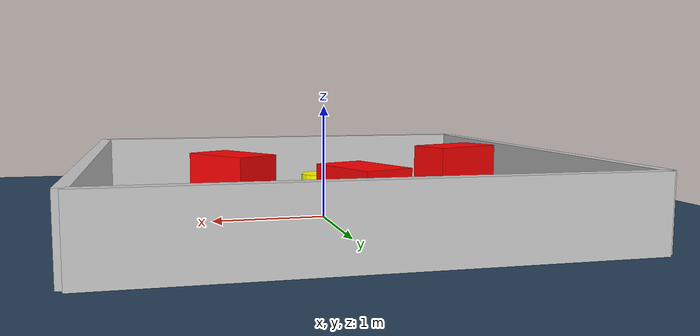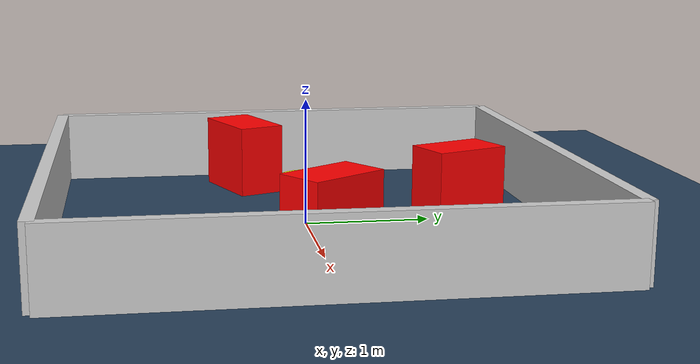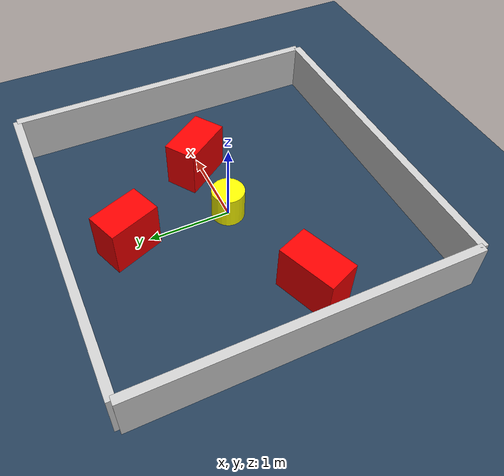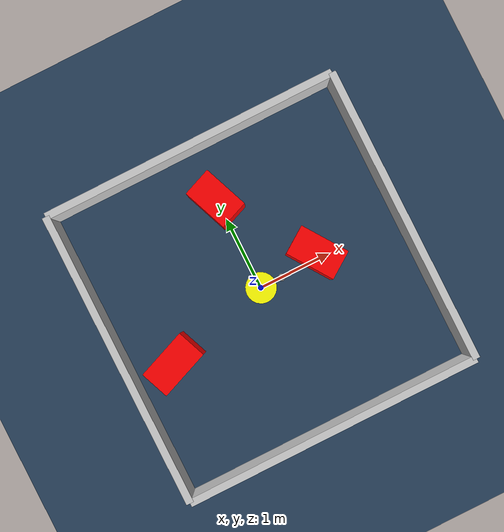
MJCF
<?xml version="1.0" ?>
<mujoco model="generated_environment">
  <option timestep="0.01" integrator="RK4" cone="elliptic"/>
  <default>
    <geom density="1"/>
  </default>
  <asset>
    <texture builtin="gradient" height="3072" rgb1="0.3 0.5 0.7" rgb2="0 0 0" type="skybox" width="512"/>
    <texture builtin="checker" height="300" mark="edge" markrgb="0.8 0.8 0.8" name="groundplane" rgb1="0.2 0.3 0.4" rgb2="0.1 0.2 0.3" type="2d" width="300"/>
    <material name="groundplane" reflectance="0.2" texrepeat="5 5" texture="groundplane" texuniform="true"/>
    <material name="robot" rgba="0.0 1.0 0.0 1"/>
  </asset>
  <worldbody>
    <light dir="0 0 -1" directional="true" pos="0 0 1.5"/>
    <geom condim="4" friction="1.0 0.005 0.001" material="groundplane" name="floor" size="0 0 0.05" type="plane"/>
    <body name="walls">
      <geom name="wall_1" condim="4" pos="-2.0 0.0 0.3" rgba="0.800000011920929 0.800000011920929 0.800000011920929 1.0" size="0.05 2.0 0.3" type="box"/>
      <geom name="wall_2" condim="4" pos="2.0 0.0 0.3" rgba="0.800000011920929 0.800000011920929 0.800000011920929 1.0" size="0.05 2.0 0.3" type="box"/>
      <geom name="wall_3" condim="4" pos="0.0 -2.0 0.3" rgba="0.800000011920929 0.800000011920929 0.800000011920929 1.0" size="2.0 0.05 0.3" type="box"/>
      <geom name="wall_4" condim="4" pos="0.0 2.0 0.3" rgba="0.800000011920929 0.800000011920929 0.800000011920929 1.0" size="2.0 0.05 0.3" type="box"/>
    </body>
    <body name="robot">
      <joint name="joint_x" type="slide" pos="0 0 0" axis="1 0 0"/>
      <joint name="joint_y" type="slide" pos="0 0 0" axis="0 1 0"/>
      <geom name="robot" type="sphere" pos="0.3 0.0 0.2" size="0.05" mass="5." friction="1.0 0.005 0.0001" condim="4" rgba="0.5 0.5 0.5 1.0"/>
      <site name="sensor_ball"/>
    </body>
    <body name="obstacle_movable_1">
      <geom name="obstacle_movable_1" condim="4" pos="0.0 0.0 0.2" euler="0 0 0.0" friction="1.0 0.005 0.001" rgba="1.0 1.0 0.0 1.0" size="0.2 0.2 0.0" type="cylinder" mass="0.1"/>
      <joint type="free"/>
    </body>
    <body name="obstacle_2_static">
      <geom name="obstacle_2_static" condim="4" pos="-0.008161595193930005 1.250865774561195 0.3" euler="0 0 291.3744308176498" friction="1.0 0.005 0.001" rgba="1 0 0 1" size="0.3127769720568152 0.2 0.3" type="box"/>
    </body>
    <body name="obstacle_3_static">
      <geom name="obstacle_3_static" condim="4" pos="0.8265513044810266 0.07727740028096242 0.3" euler="0 0 124.53194805671825" friction="1.0 0.005 0.001" rgba="1 0 0 1" size="0.33416638097704277 0.2 0.3" type="box"/>
    </body>
    <body name="obstacle_4_static">
      <geom name="obstacle_4_static" condim="4" pos="-1.411629645228875 -0.3604648536812691 0.3" euler="0 0 201.5256862814697" friction="1.0 0.005 0.001" rgba="1 0 0 1" size="0.3473102438965797 0.2 0.3" type="box"/>
    </body>
  </worldbody>
  <actuator>
    <motor name="actuator_x" joint="joint_x" gear="1" ctrlrange="-1 1"/>
    <motor name="actuator_y" joint="joint_y" gear="1" ctrlrange="-1 1"/>
  </actuator>
</mujoco>
